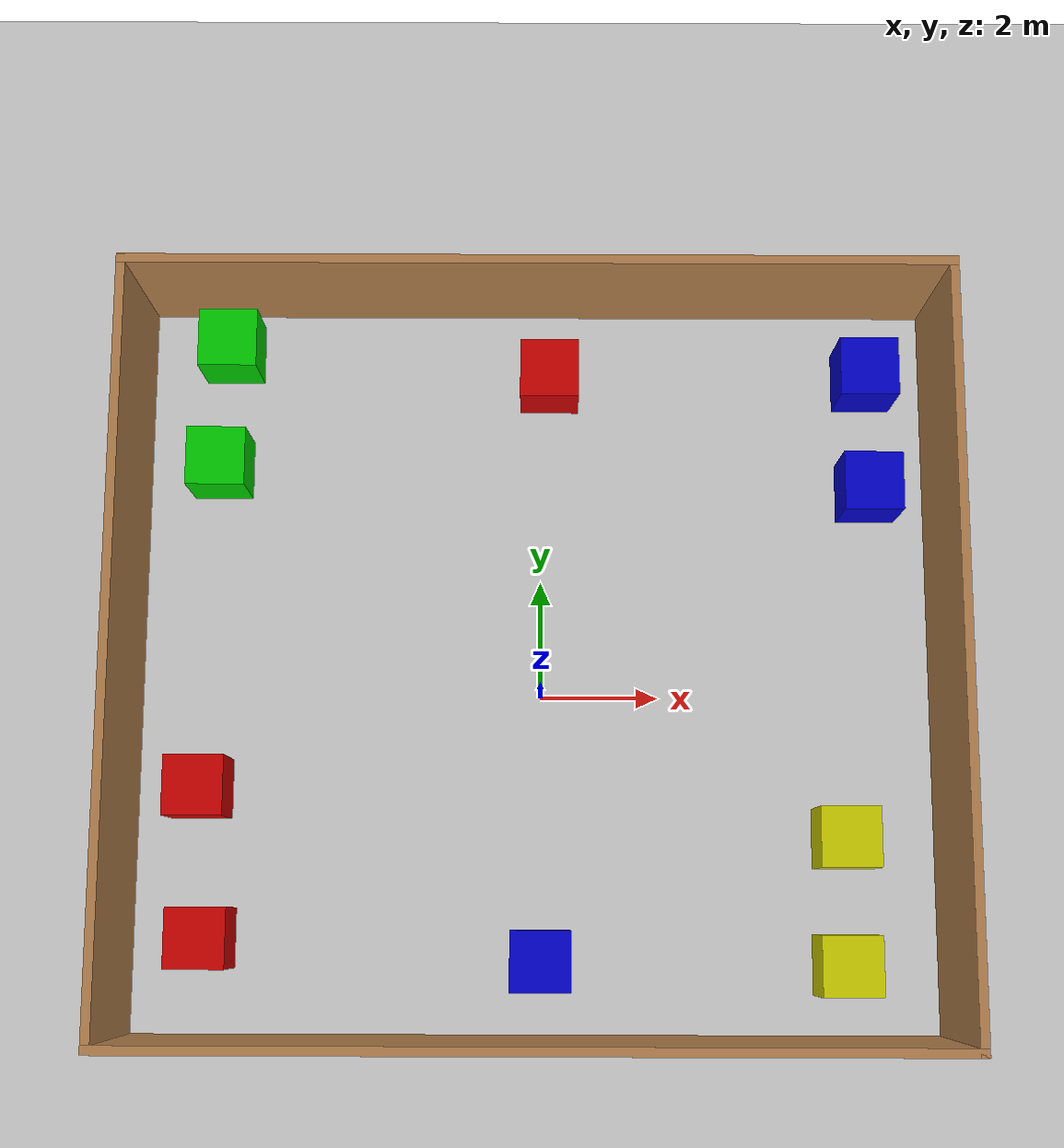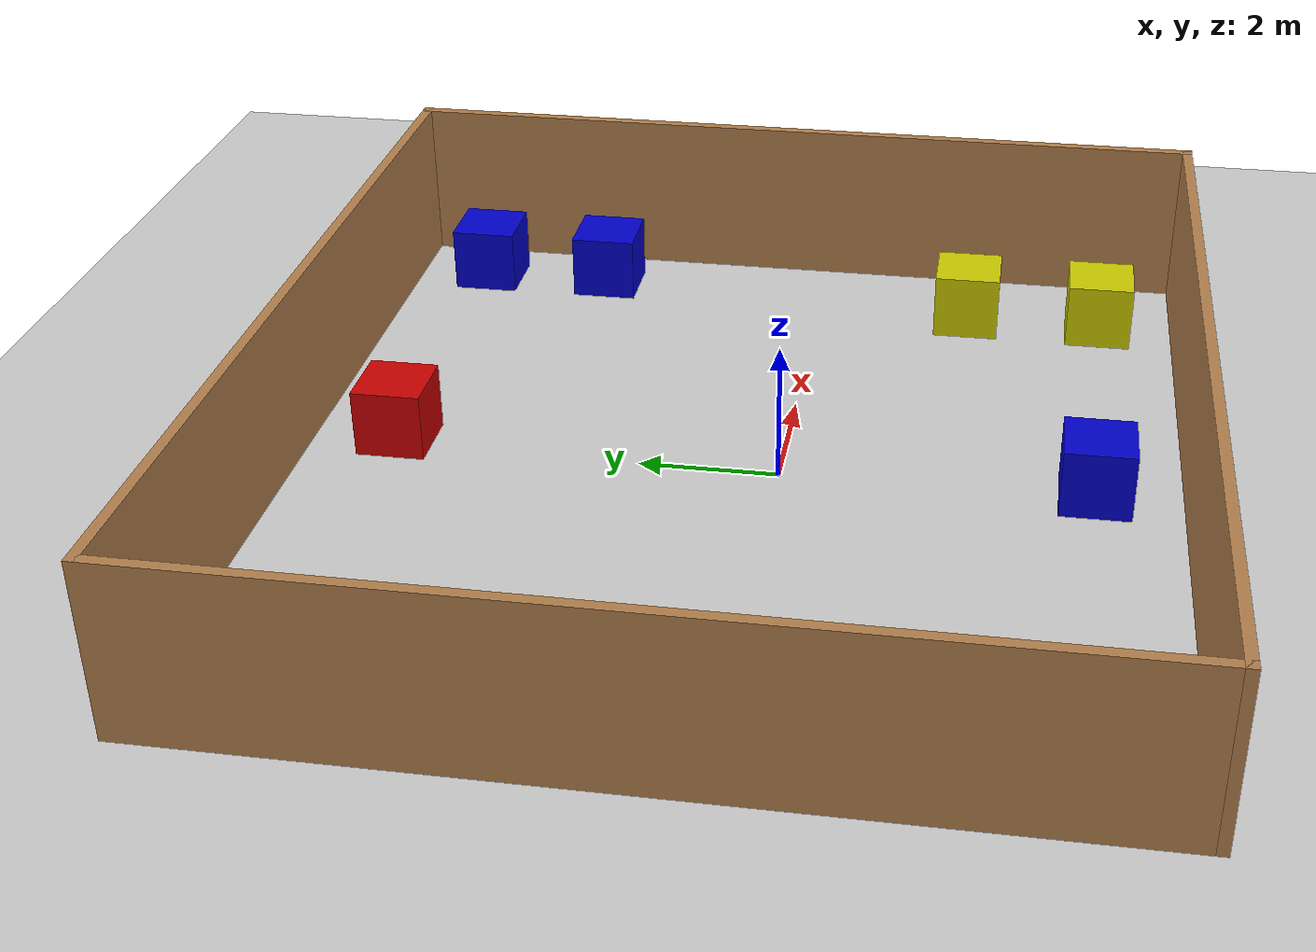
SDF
<sdf version="1.6">
 <world name="default">
  <light name="sun" type="directional">
   <pose>0 0 10 0 -0 0</pose>
   <diffuse>0.8 0.8 0.8 1</diffuse>
   <specular>0.2 0.2 0.2 1</specular>
   <attenuation>
    <range>1000</range>
    <constant>0.9</constant>
    <linear>0.01</linear>
    <quadratic>0.001</quadratic>
   </attenuation>
   <direction>-0.5 0.1 -0.9</direction>
  </light>
  <model name="ground_plane">
   <static>1</static>
   <link name="link">
    <collision name="collision">
     <geometry><plane><normal>0 0 1</normal><size>100 100</size></plane></geometry>
     <surface>
      <contact><collide_bitmask>65535</collide_bitmask></contact>
      <friction><ode><mu>100</mu><mu2>50</mu2></ode></friction>
     </surface>
    </collision>
    <visual name="visual">
     <cast_shadows>0</cast_shadows>
     <geometry><plane><normal>0 0 1</normal><size>100 100</size></plane></geometry>
     <material>
      <script><uri>file://media/materials/scripts/gazebo.material</uri><name>Gazebo/Grey</name></script>
     </material>
    </visual>
   </link>
  </model>
  <gravity>0 0 -9.8</gravity>
  <magnetic_field>6e-06 2.3e-05 -4.2e-05</magnetic_field>
  <atmosphere type="adiabatic"/>
  <physics name="default_physics" default="0" type="ode">
   <max_step_size>0.001</max_step_size>
   <real_time_factor>1</real_time_factor>
   <real_time_update_rate>1000</real_time_update_rate>
  </physics>
  <scene><ambient>0.4 0.4 0.4 1</ambient><background>0.7 0.7 0.7 1</background><shadows>1</shadows></scene>
  <audio><device>default</device></audio>
  <spherical_coordinates>
   <surface_model>EARTH_WGS84</surface_model>
   <latitude_deg>0</latitude_deg>
   <longitude_deg>0</longitude_deg>
   <elevation>0</elevation>
   <heading_deg>0</heading_deg>
  </spherical_coordinates>
  <model name="box_stage">
   <pose>-0.072051 0.59811 0 0 -0 0</pose>
   <link name="Wall_22">
    <collision name="Wall_22_Collision">
     <geometry><box><size>13.75 0.15 2.5</size></box></geometry>
     <pose>0 0 1.25 0 -0 0</pose>
    </collision>
    <visual name="Wall_22_Visual">
     <pose>0 0 1.25 0 -0 0</pose>
     <geometry><box><size>13.75 0.15 2.5</size></box></geometry>
     <material>
      <script><uri>file://media/materials/scripts/gazebo.material</uri><name>Gazebo/Wood</name></script>
      <ambient>1 1 1 1</ambient>
     </material>
     <meta><layer>0</layer></meta>
    </visual>
    <pose>-0 -6.3 0 0 -0 0</pose>
   </link>
   <link name="Wall_23">
    <collision name="Wall_23_Collision">
     <geometry><box><size>12.75 0.15 2.5</size></box></geometry>
     <pose>0 0 1.25 0 -0 0</pose>
    </collision>
    <visual name="Wall_23_Visual">
     <pose>0 0 1.25 0 -0 0</pose>
     <geometry><box><size>12.75 0.15 2.5</size></box></geometry>
     <material>
      <script><uri>file://media/materials/scripts/gazebo.material</uri><name>Gazebo/Wood</name></script>
      <ambient>1 1 1 1</ambient>
     </material>
     <meta><layer>0</layer></meta>
    </visual>
    <pose>6.8 -0 0 0 -0 1.5708</pose>
   </link>
   <link name="Wall_26">
    <collision name="Wall_26_Collision">
     <geometry><box><size>12.75 0.15 2.5</size></box></geometry>
     <pose>0 0 1.25 0 -0 0</pose>
    </collision>
    <visual name="Wall_26_Visual">
     <pose>0 0 1.25 0 -0 0</pose>
     <geometry><box><size>12.75 0.15 2.5</size></box></geometry>
     <material>
      <script><uri>file://media/materials/scripts/gazebo.material</uri><name>Gazebo/Wood</name></script>
      <ambient>1 1 1 1</ambient>
     </material>
     <meta><layer>0</layer></meta>
    </visual>
    <pose>-6.8 -0 0 0 -0 1.5708</pose>
   </link>
   <link name="Wall_28">
    <collision name="Wall_28_Collision">
     <geometry><box><size>13.75 0.15 2.5</size></box></geometry>
     <pose>0 0 1.25 0 -0 0</pose>
    </collision>
    <visual name="Wall_28_Visual">
     <pose>0 0 1.25 0 -0 0</pose>
     <geometry><box><size>13.75 0.15 2.5</size></box></geometry>
     <material>
      <script><uri>file://media/materials/scripts/gazebo.material</uri><name>Gazebo/Wood</name></script>
      <ambient>1 1 1 1</ambient>
     </material>
     <meta><layer>0</layer></meta>
    </visual>
    <pose>-0 6.3 0 0 -0 0</pose>
   </link>
   <static>1</static>
  </model>
  <model name="yellow_box">
   <link name="link">
    <inertial>
     <mass>1</mass>
     <inertia>
      <ixx>0.166667</ixx>
      <ixy>0</ixy>
      <ixz>0</ixz>
      <iyy>0.166667</iyy>
      <iyz>0</iyz>
      <izz>0.166667</izz>
     </inertia>
    </inertial>
    <visual name="visual">
     <geometry><box><size>1 1 1</size></box></geometry>
     <material>
      <script><name>Gazebo/Grey</name><uri>file://media/materials/scripts/gazebo.material</uri></script>
      <ambient>0.8 0.8 0 1</ambient>
      <shader type="vertex"><normal_map>__default__</normal_map></shader>
      <diffuse>0.7 0.7 0.7 1</diffuse>
      <specular>0.01 0.01 0.01 1</specular>
      <emissive>0 0 0 1</emissive>
     </material>
    </visual>
    <collision name="collision">
     <geometry><box><size>1 1 1</size></box></geometry>
     <surface>
      <friction>
       <ode><mu>1</mu><mu2>1</mu2><fdir1>0 0 0</fdir1><slip1>0</slip1><slip2>0</slip2></ode>
       <torsional>
        <coefficient>1</coefficient>
        <patch_radius>0</patch_radius>
        <surface_radius>0</surface_radius>
        <use_patch_radius>1</use_patch_radius>
        <ode><slip>0</slip></ode>
       </torsional>
      </friction>
      <bounce><restitution_coefficient>0</restitution_coefficient><threshold>1e+06</threshold></bounce>
      <contact>
       <collide_without_contact>0</collide_without_contact>
       <collide_without_contact_bitmask>1</collide_without_contact_bitmask>
       <collide_bitmask>1</collide_bitmask>
       <ode>
        <soft_cfm>0</soft_cfm>
        <soft_erp>0.2</soft_erp>
        <kp>1e+13</kp>
        <kd>1</kd>
        <max_vel>0.01</max_vel>
        <min_depth>0</min_depth>
       </ode>
       <bullet>
        <split_impulse>1</split_impulse>
        <split_impulse_penetration_threshold>-0.01</split_impulse_penetration_threshold>
        <soft_cfm>0</soft_cfm>
        <soft_erp>0.2</soft_erp>
        <kp>1e+13</kp>
        <kd>1</kd>
       </bullet>
      </contact>
     </surface>
    </collision>
   </link>
   <static>0</static>
   <pose>5.0602 -4.46788 0.5 0 -0 0</pose>
  </model>
  <model name="red_box">
   <link name="link">
    <inertial>
     <mass>1</mass>
     <inertia>
      <ixx>0.166667</ixx>
      <ixy>0</ixy>
      <ixz>0</ixz>
      <iyy>0.166667</iyy>
      <iyz>0</iyz>
      <izz>0.166667</izz>
     </inertia>
    </inertial>
    <visual name="visual">
     <geometry><box><size>1 1 1</size></box></geometry>
     <material>
      <script><name>Gazebo/Grey</name><uri>file://media/materials/scripts/gazebo.material</uri></script>
      <ambient>0.8 0 0 0</ambient>
      <shader type="vertex"><normal_map>__default__</normal_map></shader>
      <diffuse>0.7 0.7 0.7 1</diffuse>
      <specular>0.01 0.01 0.01 1</specular>
      <emissive>0 0 0 1</emissive>
     </material>
    </visual>
    <collision name="collision">
     <geometry><box><size>1 1 1</size></box></geometry>
     <surface>
      <friction>
       <ode><mu>1</mu><mu2>1</mu2><fdir1>0 0 0</fdir1><slip1>0</slip1><slip2>0</slip2></ode>
       <torsional>
        <coefficient>1</coefficient>
        <patch_radius>0</patch_radius>
        <surface_radius>0</surface_radius>
        <use_patch_radius>1</use_patch_radius>
        <ode><slip>0</slip></ode>
       </torsional>
      </friction>
      <bounce><restitution_coefficient>0</restitution_coefficient><threshold>1e+06</threshold></bounce>
      <contact>
       <collide_without_contact>0</collide_without_contact>
       <collide_without_contact_bitmask>1</collide_without_contact_bitmask>
       <collide_bitmask>1</collide_bitmask>
       <ode>
        <soft_cfm>0</soft_cfm>
        <soft_erp>0.2</soft_erp>
        <kp>1e+13</kp>
        <kd>1</kd>
        <max_vel>0.01</max_vel>
        <min_depth>0</min_depth>
       </ode>
       <bullet>
        <split_impulse>1</split_impulse>
        <split_impulse_penetration_threshold>-0.01</split_impulse_penetration_threshold>
        <soft_cfm>0</soft_cfm>
        <soft_erp>0.2</soft_erp>
        <kp>1e+13</kp>
        <kd>1</kd>
       </bullet>
      </contact>
     </surface>
    </collision>
   </link>
   <static>0</static>
   <pose>-5.58875 -4.05394 0.5 0 -0 0</pose>
  </model>
  <model name="green_box">
   <link name="link">
    <inertial>
     <mass>1</mass>
     <inertia>
      <ixx>0.166667</ixx>
      <ixy>0</ixy>
      <ixz>0</ixz>
      <iyy>0.166667</iyy>
      <iyz>0</iyz>
      <izz>0.166667</izz>
     </inertia>
    </inertial>
    <visual name="visual">
     <geometry><box><size>1 1 1</size></box></geometry>
     <material>
      <script><name>Gazebo/Grey</name><uri>file://media/materials/scripts/gazebo.material</uri></script>
      <ambient>0 0.8 0 1</ambient>
      <shader type="vertex"><normal_map>__default__</normal_map></shader>
      <diffuse>0.7 0.7 0.7 1</diffuse>
      <specular>0.01 0.01 0.01 1</specular>
      <emissive>0 0 0 1</emissive>
     </material>
    </visual>
    <collision name="collision">
     <geometry><box><size>1 1 1</size></box></geometry>
     <surface>
      <friction>
       <ode><mu>1</mu><mu2>1</mu2><fdir1>0 0 0</fdir1><slip1>0</slip1><slip2>0</slip2></ode>
       <torsional>
        <coefficient>1</coefficient>
        <patch_radius>0</patch_radius>
        <surface_radius>0</surface_radius>
        <use_patch_radius>1</use_patch_radius>
        <ode><slip>0</slip></ode>
       </torsional>
      </friction>
      <bounce><restitution_coefficient>0</restitution_coefficient><threshold>1e+06</threshold></bounce>
      <contact>
       <collide_without_contact>0</collide_without_contact>
       <collide_without_contact_bitmask>1</collide_without_contact_bitmask>
       <collide_bitmask>1</collide_bitmask>
       <ode>
        <soft_cfm>0</soft_cfm>
        <soft_erp>0.2</soft_erp>
        <kp>1e+13</kp>
        <kd>1</kd>
        <max_vel>0.01</max_vel>
        <min_depth>0</min_depth>
       </ode>
       <bullet>
        <split_impulse>1</split_impulse>
        <split_impulse_penetration_threshold>-0.01</split_impulse_penetration_threshold>
        <soft_cfm>0</soft_cfm>
        <soft_erp>0.2</soft_erp>
        <kp>1e+13</kp>
        <kd>1</kd>
       </bullet>
      </contact>
     </surface>
    </collision>
   </link>
   <static>0</static>
   <pose>-5.38173 6.10186 0.5 0 -0 0</pose>
  </model>
  <model name="blue_box">
   <link name="link">
    <inertial>
     <mass>1</mass>
     <inertia>
      <ixx>0.166667</ixx>
      <ixy>0</ixy>
      <ixz>0</ixz>
      <iyy>0.166667</iyy>
      <iyz>0</iyz>
      <izz>0.166667</izz>
     </inertia>
    </inertial>
    <visual name="visual">
     <geometry><box><size>1 1 1</size></box></geometry>
     <material>
      <script><name>Gazebo/Grey</name><uri>file://media/materials/scripts/gazebo.material</uri></script>
      <ambient>0 0 0.8 1</ambient>
      <shader type="vertex"><normal_map>__default__</normal_map></shader>
      <diffuse>0.7 0.7 0.7 1</diffuse>
      <specular>0.01 0.01 0.01 1</specular>
      <emissive>0 0 0 1</emissive>
     </material>
    </visual>
    <collision name="collision">
     <geometry><box><size>1 1 1</size></box></geometry>
     <surface>
      <friction>
       <ode><mu>1</mu><mu2>1</mu2><fdir1>0 0 0</fdir1><slip1>0</slip1><slip2>0</slip2></ode>
       <torsional>
        <coefficient>1</coefficient>
        <patch_radius>0</patch_radius>
        <surface_radius>0</surface_radius>
        <use_patch_radius>1</use_patch_radius>
        <ode><slip>0</slip></ode>
       </torsional>
      </friction>
      <bounce><restitution_coefficient>0</restitution_coefficient><threshold>1e+06</threshold></bounce>
      <contact>
       <collide_without_contact>0</collide_without_contact>
       <collide_without_contact_bitmask>1</collide_without_contact_bitmask>
       <collide_bitmask>1</collide_bitmask>
       <ode>
        <soft_cfm>0</soft_cfm>
        <soft_erp>0.2</soft_erp>
        <kp>1e+13</kp>
        <kd>1</kd>
        <max_vel>0.01</max_vel>
        <min_depth>0</min_depth>
       </ode>
       <bullet>
        <split_impulse>1</split_impulse>
        <split_impulse_penetration_threshold>-0.01</split_impulse_penetration_threshold>
        <soft_cfm>0</soft_cfm>
        <soft_erp>0.2</soft_erp>
        <kp>1e+13</kp>
        <kd>1</kd>
       </bullet>
      </contact>
     </surface>
    </collision>
   </link>
   <static>0</static>
   <pose>5.61341 5.6189 0.5 0 -0 0</pose>
  </model>
  <model name="red_box_0">
   <link name="link">
    <inertial>
     <mass>1</mass>
     <inertia>
      <ixx>0.166667</ixx>
      <ixy>0</ixy>
      <ixz>0</ixz>
      <iyy>0.166667</iyy>
      <iyz>0</iyz>
      <izz>0.166667</izz>
     </inertia>
    </inertial>
    <visual name="visual">
     <geometry><box><size>1 1 1</size></box></geometry>
     <material>
      <script><name>Gazebo/Grey</name><uri>file://media/materials/scripts/gazebo.material</uri></script>
      <ambient>0.8 0 0 0</ambient>
      <shader type="vertex"><normal_map>__default__</normal_map></shader>
      <diffuse>0.7 0.7 0.7 1</diffuse>
      <specular>0.01 0.01 0.01 1</specular>
      <emissive>0 0 0 1</emissive>
     </material>
    </visual>
    <collision name="collision">
     <geometry><box><size>1 1 1</size></box></geometry>
     <surface>
      <friction>
       <ode><mu>1</mu><mu2>1</mu2><fdir1>0 0 0</fdir1><slip1>0</slip1><slip2>0</slip2></ode>
       <torsional>
        <coefficient>1</coefficient>
        <patch_radius>0</patch_radius>
        <surface_radius>0</surface_radius>
        <use_patch_radius>1</use_patch_radius>
        <ode><slip>0</slip></ode>
       </torsional>
      </friction>
      <bounce><restitution_coefficient>0</restitution_coefficient><threshold>1e+06</threshold></bounce>
      <contact>
       <collide_without_contact>0</collide_without_contact>
       <collide_without_contact_bitmask>1</collide_without_contact_bitmask>
       <collide_bitmask>1</collide_bitmask>
       <ode>
        <soft_cfm>0</soft_cfm>
        <soft_erp>0.2</soft_erp>
        <kp>1e+13</kp>
        <kd>1</kd>
        <max_vel>0.01</max_vel>
        <min_depth>0</min_depth>
       </ode>
       <bullet>
        <split_impulse>1</split_impulse>
        <split_impulse_penetration_threshold>-0.01</split_impulse_penetration_threshold>
        <soft_cfm>0</soft_cfm>
        <soft_erp>0.2</soft_erp>
        <kp>1e+13</kp>
        <kd>1</kd>
       </bullet>
      </contact>
     </surface>
    </collision>
   </link>
   <static>0</static>
   <pose>-5.70815 -1.57012 0.5 0 -0 0</pose>
  </model>
  <model name="green_box_0">
   <link name="link">
    <inertial>
     <mass>1</mass>
     <inertia>
      <ixx>0.166667</ixx>
      <ixy>0</ixy>
      <ixz>0</ixz>
      <iyy>0.166667</iyy>
      <iyz>0</iyz>
      <izz>0.166667</izz>
     </inertia>
    </inertial>
    <visual name="visual">
     <geometry><box><size>1 1 1</size></box></geometry>
     <material>
      <script><name>Gazebo/Grey</name><uri>file://media/materials/scripts/gazebo.material</uri></script>
      <ambient>0 0.8 0 1</ambient>
      <shader type="vertex"><normal_map>__default__</normal_map></shader>
      <diffuse>0.7 0.7 0.7 1</diffuse>
      <specular>0.01 0.01 0.01 1</specular>
      <emissive>0 0 0 1</emissive>
     </material>
    </visual>
    <collision name="collision">
     <geometry><box><size>1 1 1</size></box></geometry>
     <surface>
      <friction>
       <ode><mu>1</mu><mu2>1</mu2><fdir1>0 0 0</fdir1><slip1>0</slip1><slip2>0</slip2></ode>
       <torsional>
        <coefficient>1</coefficient>
        <patch_radius>0</patch_radius>
        <surface_radius>0</surface_radius>
        <use_patch_radius>1</use_patch_radius>
        <ode><slip>0</slip></ode>
       </torsional>
      </friction>
      <bounce><restitution_coefficient>0</restitution_coefficient><threshold>1e+06</threshold></bounce>
      <contact>
       <collide_without_contact>0</collide_without_contact>
       <collide_without_contact_bitmask>1</collide_without_contact_bitmask>
       <collide_bitmask>1</collide_bitmask>
       <ode>
        <soft_cfm>0</soft_cfm>
        <soft_erp>0.2</soft_erp>
        <kp>1e+13</kp>
        <kd>1</kd>
        <max_vel>0.01</max_vel>
        <min_depth>0</min_depth>
       </ode>
       <bullet>
        <split_impulse>1</split_impulse>
        <split_impulse_penetration_threshold>-0.01</split_impulse_penetration_threshold>
        <soft_cfm>0</soft_cfm>
        <soft_erp>0.2</soft_erp>
        <kp>1e+13</kp>
        <kd>1</kd>
       </bullet>
      </contact>
     </surface>
    </collision>
   </link>
   <static>0</static>
   <pose>-5.52214 4.00862 0.5 0 -0 0</pose>
  </model>
  <model name="yellow_box_0">
   <link name="link">
    <inertial>
     <mass>1</mass>
     <inertia>
      <ixx>0.166667</ixx>
      <ixy>0</ixy>
      <ixz>0</ixz>
      <iyy>0.166667</iyy>
      <iyz>0</iyz>
      <izz>0.166667</izz>
     </inertia>
    </inertial>
    <visual name="visual">
     <geometry><box><size>1 1 1</size></box></geometry>
     <material>
      <script><name>Gazebo/Grey</name><uri>file://media/materials/scripts/gazebo.material</uri></script>
      <ambient>0.8 0.8 0 1</ambient>
      <shader type="vertex"><normal_map>__default__</normal_map></shader>
      <diffuse>0.7 0.7 0.7 1</diffuse>
      <specular>0.01 0.01 0.01 1</specular>
      <emissive>0 0 0 1</emissive>
     </material>
    </visual>
    <collision name="collision">
     <geometry><box><size>1 1 1</size></box></geometry>
     <surface>
      <friction>
       <ode><mu>1</mu><mu2>1</mu2><fdir1>0 0 0</fdir1><slip1>0</slip1><slip2>0</slip2></ode>
       <torsional>
        <coefficient>1</coefficient>
        <patch_radius>0</patch_radius>
        <surface_radius>0</surface_radius>
        <use_patch_radius>1</use_patch_radius>
        <ode><slip>0</slip></ode>
       </torsional>
      </friction>
      <bounce><restitution_coefficient>0</restitution_coefficient><threshold>1e+06</threshold></bounce>
      <contact>
       <collide_without_contact>0</collide_without_contact>
       <collide_without_contact_bitmask>1</collide_without_contact_bitmask>
       <collide_bitmask>1</collide_bitmask>
       <ode>
        <soft_cfm>0</soft_cfm>
        <soft_erp>0.2</soft_erp>
        <kp>1e+13</kp>
        <kd>1</kd>
        <max_vel>0.01</max_vel>
        <min_depth>0</min_depth>
       </ode>
       <bullet>
        <split_impulse>1</split_impulse>
        <split_impulse_penetration_threshold>-0.01</split_impulse_penetration_threshold>
        <soft_cfm>0</soft_cfm>
        <soft_erp>0.2</soft_erp>
        <kp>1e+13</kp>
        <kd>1</kd>
       </bullet>
      </contact>
     </surface>
    </collision>
   </link>
   <static>0</static>
   <pose>5.08796 -2.38266 0.5 0 -0 0</pose>
  </model>
  <model name="blue_box_0">
   <link name="link">
    <inertial>
     <mass>1</mass>
     <inertia>
      <ixx>0.166667</ixx>
      <ixy>0</ixy>
      <ixz>0</ixz>
      <iyy>0.166667</iyy>
      <iyz>0</iyz>
      <izz>0.166667</izz>
     </inertia>
    </inertial>
    <visual name="visual">
     <geometry><box><size>1 1 1</size></box></geometry>
     <material>
      <script><name>Gazebo/Grey</name><uri>file://media/materials/scripts/gazebo.material</uri></script>
      <ambient>0 0 0.8 1</ambient>
      <shader type="vertex"><normal_map>__default__</normal_map></shader>
      <diffuse>0.7 0.7 0.7 1</diffuse>
      <specular>0.01 0.01 0.01 1</specular>
      <emissive>0 0 0 1</emissive>
     </material>
    </visual>
    <collision name="collision">
     <geometry><box><size>1 1 1</size></box></geometry>
     <surface>
      <friction>
       <ode><mu>1</mu><mu2>1</mu2><fdir1>0 0 0</fdir1><slip1>0</slip1><slip2>0</slip2></ode>
       <torsional>
        <coefficient>1</coefficient>
        <patch_radius>0</patch_radius>
        <surface_radius>0</surface_radius>
        <use_patch_radius>1</use_patch_radius>
        <ode><slip>0</slip></ode>
       </torsional>
      </friction>
      <bounce><restitution_coefficient>0</restitution_coefficient><threshold>1e+06</threshold></bounce>
      <contact>
       <collide_without_contact>0</collide_without_contact>
       <collide_without_contact_bitmask>1</collide_without_contact_bitmask>
       <collide_bitmask>1</collide_bitmask>
       <ode>
        <soft_cfm>0</soft_cfm>
        <soft_erp>0.2</soft_erp>
        <kp>1e+13</kp>
        <kd>1</kd>
        <max_vel>0.01</max_vel>
        <min_depth>0</min_depth>
       </ode>
       <bullet>
        <split_impulse>1</split_impulse>
        <split_impulse_penetration_threshold>-0.01</split_impulse_penetration_threshold>
        <soft_cfm>0</soft_cfm>
        <soft_erp>0.2</soft_erp>
        <kp>1e+13</kp>
        <kd>1</kd>
       </bullet>
      </contact>
     </surface>
    </collision>
   </link>
   <static>0</static>
   <pose>5.63657 3.60893 0.5 0 -0 0</pose>
  </model>
  <model name="red_box_1">
   <link name="link">
    <inertial>
     <mass>1</mass>
     <inertia>
      <ixx>0.166667</ixx>
      <ixy>0</ixy>
      <ixz>0</ixz>
      <iyy>0.166667</iyy>
      <iyz>0</iyz>
      <izz>0.166667</izz>
     </inertia>
    </inertial>
    <visual name="visual">
     <geometry><box><size>1 1 1</size></box></geometry>
     <material>
      <script><name>Gazebo/Grey</name><uri>file://media/materials/scripts/gazebo.material</uri></script>
      <ambient>0.8 0 0 0</ambient>
      <shader type="vertex"><normal_map>__default__</normal_map></shader>
      <diffuse>0.7 0.7 0.7 1</diffuse>
      <specular>0.01 0.01 0.01 1</specular>
      <emissive>0 0 0 1</emissive>
     </material>
    </visual>
    <collision name="collision">
     <geometry><box><size>1 1 1</size></box></geometry>
     <surface>
      <friction>
       <ode><mu>1</mu><mu2>1</mu2><fdir1>0 0 0</fdir1><slip1>0</slip1><slip2>0</slip2></ode>
       <torsional>
        <coefficient>1</coefficient>
        <patch_radius>0</patch_radius>
        <surface_radius>0</surface_radius>
        <use_patch_radius>1</use_patch_radius>
        <ode><slip>0</slip></ode>
       </torsional>
      </friction>
      <bounce><restitution_coefficient>0</restitution_coefficient><threshold>1e+06</threshold></bounce>
      <contact>
       <collide_without_contact>0</collide_without_contact>
       <collide_without_contact_bitmask>1</collide_without_contact_bitmask>
       <collide_bitmask>1</collide_bitmask>
       <ode>
        <soft_cfm>0</soft_cfm>
        <soft_erp>0.2</soft_erp>
        <kp>1e+13</kp>
        <kd>1</kd>
        <max_vel>0.01</max_vel>
        <min_depth>0</min_depth>
       </ode>
       <bullet>
        <split_impulse>1</split_impulse>
        <split_impulse_penetration_threshold>-0.01</split_impulse_penetration_threshold>
        <soft_cfm>0</soft_cfm>
        <soft_erp>0.2</soft_erp>
        <kp>1e+13</kp>
        <kd>1</kd>
       </bullet>
      </contact>
     </surface>
    </collision>
   </link>
   <static>0</static>
   <pose>0.140511 5.5701 0.5 0 -0 0</pose>
  </model>
  <model name="blue_box_1">
   <link name="link">
    <inertial>
     <mass>1</mass>
     <inertia>
      <ixx>0.166667</ixx>
      <ixy>0</ixy>
      <ixz>0</ixz>
      <iyy>0.166667</iyy>
      <iyz>0</iyz>
      <izz>0.166667</izz>
     </inertia>
    </inertial>
    <visual name="visual">
     <geometry><box><size>1 1 1</size></box></geometry>
     <material>
      <script><name>Gazebo/Grey</name><uri>file://media/materials/scripts/gazebo.material</uri></script>
      <ambient>0 0 0.8 1</ambient>
      <shader type="vertex"><normal_map>__default__</normal_map></shader>
      <diffuse>0.7 0.7 0.7 1</diffuse>
      <specular>0.01 0.01 0.01 1</specular>
      <emissive>0 0 0 1</emissive>
     </material>
    </visual>
    <collision name="collision">
     <geometry><box><size>1 1 1</size></box></geometry>
     <surface>
      <friction>
       <ode><mu>1</mu><mu2>1</mu2><fdir1>0 0 0</fdir1><slip1>0</slip1><slip2>0</slip2></ode>
       <torsional>
        <coefficient>1</coefficient>
        <patch_radius>0</patch_radius>
        <surface_radius>0</surface_radius>
        <use_patch_radius>1</use_patch_radius>
        <ode><slip>0</slip></ode>
       </torsional>
      </friction>
      <bounce><restitution_coefficient>0</restitution_coefficient><threshold>1e+06</threshold></bounce>
      <contact>
       <collide_without_contact>0</collide_without_contact>
       <collide_without_contact_bitmask>1</collide_without_contact_bitmask>
       <collide_bitmask>1</collide_bitmask>
       <ode>
        <soft_cfm>0</soft_cfm>
        <soft_erp>0.2</soft_erp>
        <kp>1e+13</kp>
        <kd>1</kd>
        <max_vel>0.01</max_vel>
        <min_depth>0</min_depth>
       </ode>
       <bullet>
        <split_impulse>1</split_impulse>
        <split_impulse_penetration_threshold>-0.01</split_impulse_penetration_threshold>
        <soft_cfm>0</soft_cfm>
        <soft_erp>0.2</soft_erp>
        <kp>1e+13</kp>
        <kd>1</kd>
       </bullet>
      </contact>
     </surface>
    </collision>
   </link>
   <static>0</static>
   <pose>0.009674 -4.40897 0.5 0 -0 0</pose>
  </model>
 </world>
</sdf>
